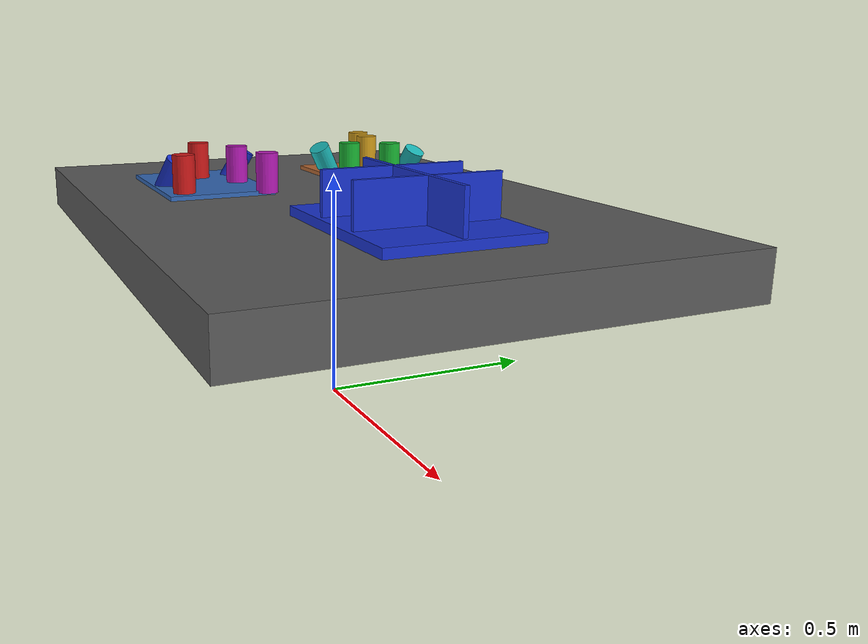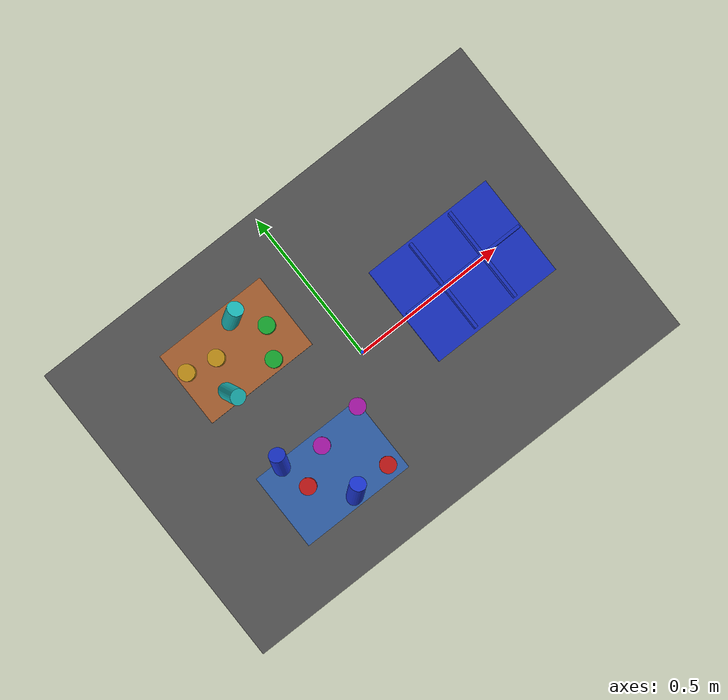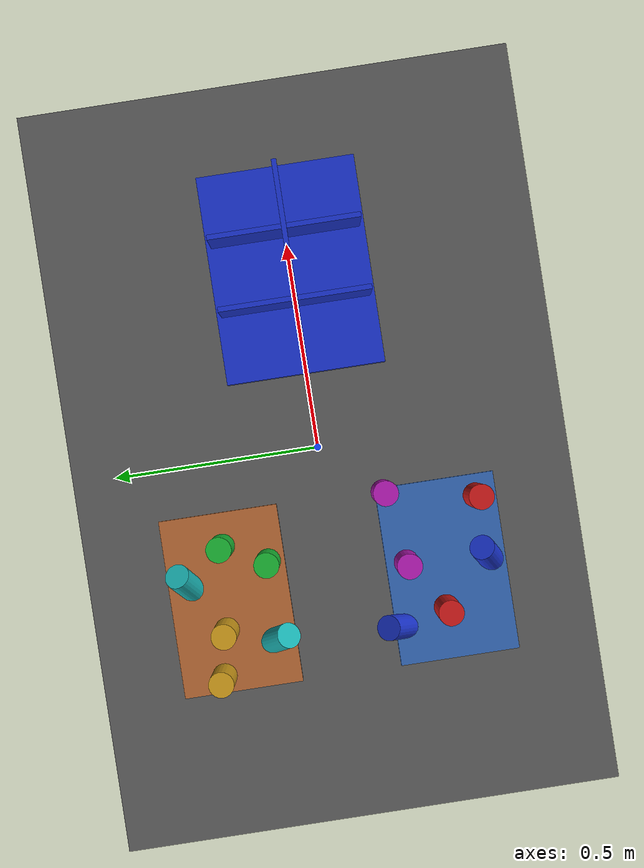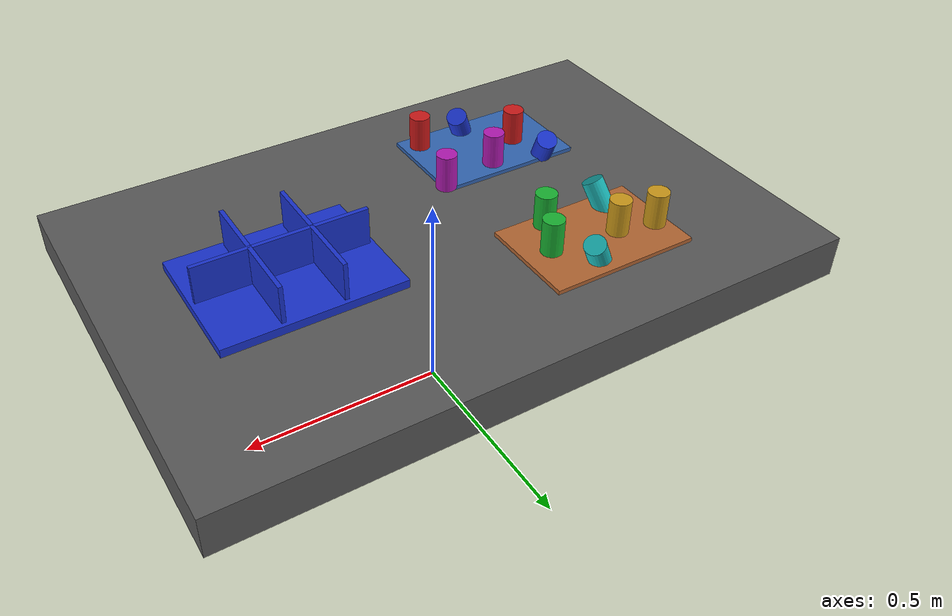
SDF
<?xml version="1.0" ?>
<sdf version="1.9">
  <!-- Standalone M1B scene.  The controller-backed Panda is spawned by the
       existing launch path; this file never alters the frozen M1A cube world. -->
  <world name="industrial_cylinder_v1">
    <physics name="bullet" type="bullet"><max_step_size>0.001</max_step_size><real_time_factor>1.0</real_time_factor></physics>
    <plugin name="gz::sim::systems::Physics" filename="gz-sim-physics-system"><engine><filename>gz-physics-bullet-featherstone-plugin</filename></engine></plugin>
    <plugin name="gz::sim::systems::UserCommands" filename="gz-sim-user-commands-system"/>
    <plugin name="gz::sim::systems::SceneBroadcaster" filename="gz-sim-scene-broadcaster-system"/>
    <plugin name="gz::sim::systems::Sensors" filename="gz-sim-sensors-system"><render_engine>ogre2</render_engine></plugin>
    <gravity>0 0 -9.81</gravity>
    <light type="directional" name="industrial_light"><pose>0 0 5 0 0 0</pose><direction>-0.3 0.2 -0.9</direction><diffuse>0.9 0.9 0.9 1</diffuse></light>
    <model name="industrial_work_table"><static>true</static><link name="link"><pose>0 0 0.4 0 0 0</pose><collision name="collision"><geometry><box><size>1.5 1.0 0.1</size></box></geometry></collision><visual name="visual"><geometry><box><size>1.5 1.0 0.1</size></box></geometry><material><diffuse>0.35 0.35 0.35 1</diffuse></material></visual></link></model>
    <model name="camera_fixture"><static>true</static><link name="camera_rgbd"><pose>-0.80 -0.80 1.40 0 0.77 0.93</pose><sensor name="front_rgbd" type="rgbd_camera"><always_on>1</always_on><update_rate>15</update_rate><topic>/xh/camera/rgbd</topic><camera><horizontal_fov>1.047</horizontal_fov><image><width>640</width><height>480</height><format>R8G8B8</format></image><clip><near>0.1</near><far>4.0</far></clip></camera></sensor></link></model>
    <model name="incoming_zone_a"><static>true</static><link name="link"><pose>-0.28 -0.22 0.455 0 0 0</pose><visual name="visual"><geometry><box><size>0.36 0.24 0.01</size></box></geometry><material><diffuse>0.2 0.4 0.7 1</diffuse></material></visual></link></model>
    <model name="incoming_zone_b"><static>true</static><link name="link"><pose>-0.28 0.22 0.455 0 0 0</pose><visual name="visual"><geometry><box><size>0.36 0.24 0.01</size></box></geometry><material><diffuse>0.7 0.4 0.2 1</diffuse></material></visual></link></model>
    <!-- M1B_RANDOM_PARTS_BEGIN -->
    <model name="cylinder_01"><pose>-0.3562 -0.2069 0.5000 0.0000 0.0000 1.5512</pose><link name="link"><inertial><mass>0.06</mass></inertial><collision name="collision"><geometry><cylinder><radius>0.025</radius><length>0.09</length></cylinder></geometry></collision><visual name="visual"><geometry><cylinder><radius>0.025</radius><length>0.09</length></cylinder></geometry><material><diffuse>0.800 0.100 0.100 1</diffuse><specular>0.15 0.15 0.15 1</specular></material></visual></link></model>
    <model name="cylinder_02"><pose>-0.1676 0.2198 0.5000 3.1416 0.0000 -2.8974</pose><link name="link"><inertial><mass>0.06</mass></inertial><collision name="collision"><geometry><cylinder><radius>0.025</radius><length>0.09</length></cylinder></geometry></collision><visual name="visual"><geometry><cylinder><radius>0.025</radius><length>0.09</length></cylinder></geometry><material><diffuse>0.100 0.700 0.200 1</diffuse><specular>0.15 0.15 0.15 1</specular></material></visual></link></model>
    <model name="cylinder_03"><pose>-0.2604 -0.3017 0.4800 0.4500 -0.3000 2.7663</pose><link name="link"><inertial><mass>0.06</mass></inertial><collision name="collision"><geometry><cylinder><radius>0.025</radius><length>0.09</length></cylinder></geometry></collision><visual name="visual"><geometry><cylinder><radius>0.025</radius><length>0.09</length></cylinder></geometry><material><diffuse>0.100 0.200 0.800 1</diffuse><specular>0.15 0.15 0.15 1</specular></material></visual></link></model>
    <model name="cylinder_04"><pose>-0.3352 0.2356 0.5000 0.0000 0.0000 -2.3454</pose><link name="link"><inertial><mass>0.06</mass></inertial><collision name="collision"><geometry><cylinder><radius>0.025</radius><length>0.09</length></cylinder></geometry></collision><visual name="visual"><geometry><cylinder><radius>0.025</radius><length>0.09</length></cylinder></geometry><material><diffuse>0.800 0.600 0.100 1</diffuse><specular>0.15 0.15 0.15 1</specular></material></visual></link></model>
    <model name="cylinder_05"><pose>-0.2551 -0.1411 0.5000 3.1416 0.0000 -1.9282</pose><link name="link"><inertial><mass>0.06</mass></inertial><collision name="collision"><geometry><cylinder><radius>0.025</radius><length>0.09</length></cylinder></geometry></collision><visual name="visual"><geometry><cylinder><radius>0.025</radius><length>0.09</length></cylinder></geometry><material><diffuse>0.700 0.100 0.700 1</diffuse><specular>0.15 0.15 0.15 1</specular></material></visual></link></model>
    <model name="cylinder_06"><pose>-0.3648 0.1323 0.4800 0.4500 -0.3000 0.9777</pose><link name="link"><inertial><mass>0.06</mass></inertial><collision name="collision"><geometry><cylinder><radius>0.025</radius><length>0.09</length></cylinder></geometry></collision><visual name="visual"><geometry><cylinder><radius>0.025</radius><length>0.09</length></cylinder></geometry><material><diffuse>0.100 0.700 0.700 1</diffuse><specular>0.15 0.15 0.15 1</specular></material></visual></link></model>
    <model name="cylinder_07"><pose>-0.1429 -0.2984 0.5000 0.0000 0.0000 -1.8023</pose><link name="link"><inertial><mass>0.06</mass></inertial><collision name="collision"><geometry><cylinder><radius>0.025</radius><length>0.09</length></cylinder></geometry></collision><visual name="visual"><geometry><cylinder><radius>0.025</radius><length>0.09</length></cylinder></geometry><material><diffuse>0.800 0.100 0.100 1</diffuse><specular>0.15 0.15 0.15 1</specular></material></visual></link></model>
    <model name="cylinder_08"><pose>-0.2110 0.1329 0.5000 3.1416 0.0000 0.9159</pose><link name="link"><inertial><mass>0.06</mass></inertial><collision name="collision"><geometry><cylinder><radius>0.025</radius><length>0.09</length></cylinder></geometry></collision><visual name="visual"><geometry><cylinder><radius>0.025</radius><length>0.09</length></cylinder></geometry><material><diffuse>0.100 0.700 0.200 1</diffuse><specular>0.15 0.15 0.15 1</specular></material></visual></link></model>
    <model name="cylinder_09"><pose>-0.3780 -0.1053 0.4800 0.4500 -0.3000 -2.9098</pose><link name="link"><inertial><mass>0.06</mass></inertial><collision name="collision"><geometry><cylinder><radius>0.025</radius><length>0.09</length></cylinder></geometry></collision><visual name="visual"><geometry><cylinder><radius>0.025</radius><length>0.09</length></cylinder></geometry><material><diffuse>0.100 0.200 0.800 1</diffuse><specular>0.15 0.15 0.15 1</specular></material></visual></link></model>
    <model name="cylinder_10"><pose>-0.4260 0.2541 0.5000 0.0000 0.0000 -2.2791</pose><link name="link"><inertial><mass>0.06</mass></inertial><collision name="collision"><geometry><cylinder><radius>0.025</radius><length>0.09</length></cylinder></geometry></collision><visual name="visual"><geometry><cylinder><radius>0.025</radius><length>0.09</length></cylinder></geometry><material><diffuse>0.800 0.600 0.100 1</diffuse><specular>0.15 0.15 0.15 1</specular></material></visual></link></model>
    <model name="cylinder_11"><pose>-0.1085 -0.1166 0.5000 3.1416 0.0000 -0.4375</pose><link name="link"><inertial><mass>0.06</mass></inertial><collision name="collision"><geometry><cylinder><radius>0.025</radius><length>0.09</length></cylinder></geometry></collision><visual name="visual"><geometry><cylinder><radius>0.025</radius><length>0.09</length></cylinder></geometry><material><diffuse>0.700 0.100 0.700 1</diffuse><specular>0.15 0.15 0.15 1</specular></material></visual></link></model>
    <model name="cylinder_12"><pose>-0.2288 0.3008 0.4800 0.4500 -0.3000 2.5691</pose><link name="link"><inertial><mass>0.06</mass></inertial><collision name="collision"><geometry><cylinder><radius>0.025</radius><length>0.09</length></cylinder></geometry></collision><visual name="visual"><geometry><cylinder><radius>0.025</radius><length>0.09</length></cylinder></geometry><material><diffuse>0.100 0.700 0.700 1</diffuse><specular>0.15 0.15 0.15 1</specular></material></visual></link></model>
    <!-- M1B_RANDOM_PARTS_END -->
    <model name="blue_partition_bin"><static>true</static><pose>0.36 0 0.45 0 0 0</pose><link name="link"><collision name="floor"><pose>0 0 0.01 0 0 0</pose><geometry><box><size>0.42 0.32 0.02</size></box></geometry></collision><visual name="floor_visual"><pose>0 0 0.01 0 0 0</pose><geometry><box><size>0.42 0.32 0.02</size></box></geometry><material><diffuse>0.1 0.2 0.8 1</diffuse></material></visual><visual name="row_divider"><pose>0 0 0.06 0 0 0</pose><geometry><box><size>0.40 0.01 0.10</size></box></geometry><material><diffuse>0.1 0.2 0.8 1</diffuse></material></visual><visual name="col_divider_a"><pose>-0.07 0 0.06 0 0 0</pose><geometry><box><size>0.01 0.30 0.10</size></box></geometry><material><diffuse>0.1 0.2 0.8 1</diffuse></material></visual><visual name="col_divider_b"><pose>0.07 0 0.06 0 0 0</pose><geometry><box><size>0.01 0.30 0.10</size></box></geometry><material><diffuse>0.1 0.2 0.8 1</diffuse></material></visual></link></model>
    <!-- Reserved only: second table, bin transport corridor, stackable-bin
         collision volume, and second arm mounting namespace. -->
  </world>
</sdf>
